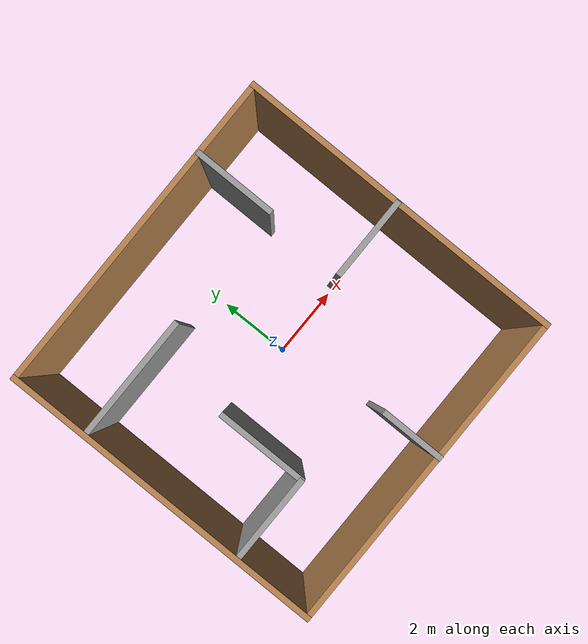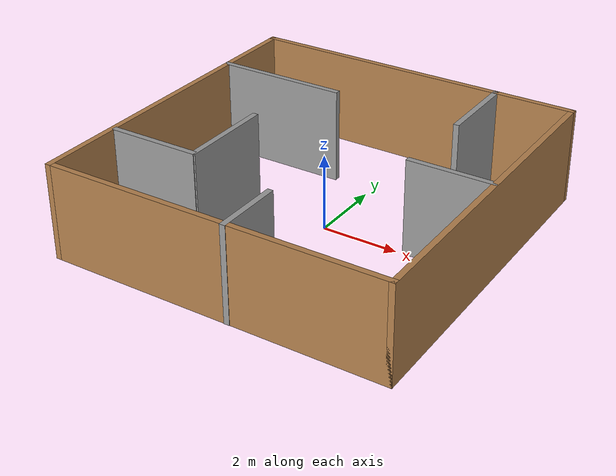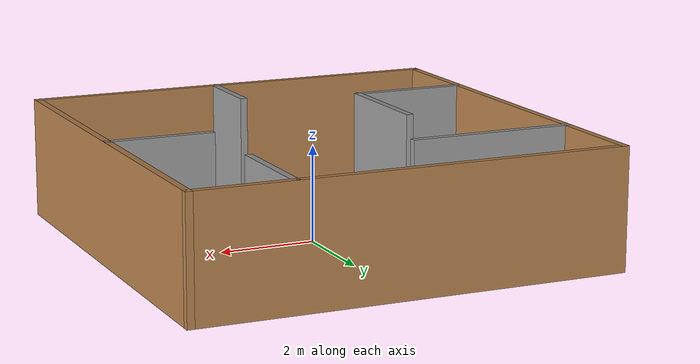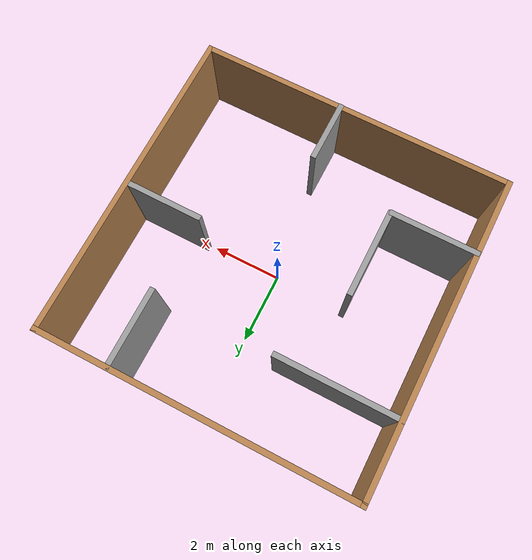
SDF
<?xml version='1.0'?>
<sdf version='1.7'>
  <model name='map_simple_base'>
    <pose>-0.069516 0.009866 0 0 -0 0</pose>
    <link name='Wall_100'>
      <collision name='Wall_100_Collision'>
        <geometry>
          <box>
            <size>2.25 0.15 2.5</size>
          </box>
        </geometry>
        <pose>0 0 1.25 0 -0 0</pose>
      </collision>
      <visual name='Wall_100_Visual'>
        <pose>0 0 1.25 0 -0 0</pose>
        <geometry>
          <box>
            <size>2.25 0.15 2.5</size>
          </box>
        </geometry>
        <material>
          <script>
            <uri>file://media/materials/scripts/gazebo.material</uri>
            <name>Gazebo/Grey</name>
          </script>
          <ambient>1 1 1 1</ambient>
        </material>
        <meta>
          <layer>0</layer>
        </meta>
      </visual>
      <pose>3.35453 0.084274 0 0 -0 3.14159</pose>
    </link>
    <link name='Wall_104'>
      <collision name='Wall_104_Collision'>
        <geometry>
          <box>
            <size>1.75 0.15 2.5</size>
          </box>
        </geometry>
        <pose>0 0 1.25 0 -0 0</pose>
      </collision>
      <visual name='Wall_104_Visual'>
        <pose>0 0 1.25 0 -0 0</pose>
        <geometry>
          <box>
            <size>1.75 0.15 2.5</size>
          </box>
        </geometry>
        <material>
          <script>
            <uri>file://media/materials/scripts/gazebo.material</uri>
            <name>Gazebo/Grey</name>
          </script>
          <ambient>1 1 1 1</ambient>
        </material>
        <meta>
          <layer>0</layer>
        </meta>
      </visual>
      <pose>0.43527 -3.63029 0 0 -0 -1.5708</pose>
    </link>
    <link name='Wall_108'>
      <collision name='Wall_108_Collision'>
        <geometry>
          <box>
            <size>2.25 0.15 2.5</size>
          </box>
        </geometry>
        <pose>0 0 1.25 0 -0 0</pose>
      </collision>
      <visual name='Wall_108_Visual'>
        <pose>0 0 1.25 0 -0 0</pose>
        <geometry>
          <box>
            <size>2.25 0.15 2.5</size>
          </box>
        </geometry>
        <material>
          <script>
            <uri>file://media/materials/scripts/gazebo.material</uri>
            <name>Gazebo/Grey</name>
          </script>
          <ambient>1 1 1 1</ambient>
        </material>
        <meta>
          <layer>0</layer>
        </meta>
      </visual>
      <pose>2.38211 3.34621 0 0 -0 -1.5708</pose>
    </link>
    <link name='Wall_14'>
      <collision name='Wall_14_Collision'>
        <geometry>
          <box>
            <size>9 0.15 2.5</size>
          </box>
        </geometry>
        <pose>0 0 1.25 0 -0 0</pose>
      </collision>
      <visual name='Wall_14_Visual'>
        <pose>0 0 1.25 0 -0 0</pose>
        <geometry>
          <box>
            <size>9 0.15 2.5</size>
          </box>
        </geometry>
        <material>
          <script>
            <uri>file://media/materials/scripts/gazebo.material</uri>
            <name>Gazebo/Wood</name>
          </script>
          <ambient>0.435294 0.796078 0.67451 1</ambient>
        </material>
        <meta>
          <layer>0</layer>
        </meta>
      </visual>
      <pose>-4.425 0.005289 0 0 -0 -1.5708</pose>
    </link>
    <link name='Wall_20'>
      <collision name='Wall_20_Collision'>
        <geometry>
          <box>
            <size>9 0.15 2.5</size>
          </box>
        </geometry>
        <pose>0 0 1.25 0 -0 0</pose>
      </collision>
      <visual name='Wall_20_Visual'>
        <pose>0 0 1.25 0 -0 0</pose>
        <geometry>
          <box>
            <size>9 0.15 2.5</size>
          </box>
        </geometry>
        <material>
          <script>
            <uri>file://media/materials/scripts/gazebo.material</uri>
            <name>Gazebo/Wood</name>
          </script>
          <ambient>0.435294 0.796078 0.67451 1</ambient>
        </material>
        <meta>
          <layer>0</layer>
        </meta>
      </visual>
      <pose>4.425 0.005289 0 0 -0 1.5708</pose>
    </link>
    <link name='Wall_21'>
      <collision name='Wall_21_Collision'>
        <geometry>
          <box>
            <size>9 0.15 2.5</size>
          </box>
        </geometry>
        <pose>0 0 1.25 0 -0 0</pose>
      </collision>
      <visual name='Wall_21_Visual'>
        <pose>0 0 1.25 0 -0 0</pose>
        <geometry>
          <box>
            <size>9 0.15 2.5</size>
          </box>
        </geometry>
        <material>
          <script>
            <uri>file://media/materials/scripts/gazebo.material</uri>
            <name>Gazebo/Wood</name>
          </script>
          <ambient>0.435294 0.796078 0.67451 1</ambient>
        </material>
        <meta>
          <layer>0</layer>
        </meta>
      </visual>
      <pose>-0 4.43029 0 0 -0 3.14159</pose>
    </link>
    <link name='Wall_23'>
      <collision name='Wall_23_Collision'>
        <geometry>
          <box>
            <size>9 0.15 2.5</size>
          </box>
        </geometry>
        <pose>0 0 1.25 0 -0 0</pose>
      </collision>
      <visual name='Wall_23_Visual'>
        <pose>0 0 1.25 0 -0 0</pose>
        <geometry>
          <box>
            <size>9 0.15 2.5</size>
          </box>
        </geometry>
        <material>
          <script>
            <uri>file://media/materials/scripts/gazebo.material</uri>
            <name>Gazebo/Wood</name>
          </script>
          <ambient>0.435294 0.796078 0.67451 1</ambient>
        </material>
        <meta>
          <layer>0</layer>
        </meta>
      </visual>
      <pose>-0 -4.41971 0 0 -0 0</pose>
    </link>
    <link name='Wall_65'>
      <collision name='Wall_65_Collision'>
        <geometry>
          <box>
            <size>2.5 0.15 2.5</size>
          </box>
        </geometry>
        <pose>0 0 1.25 0 -0 0</pose>
      </collision>
      <visual name='Wall_65_Visual'>
        <pose>0 0 1.25 0 -0 0</pose>
        <geometry>
          <box>
            <size>2.5 0.15 2.5</size>
          </box>
        </geometry>
        <material>
          <script>
            <uri>file://media/materials/scripts/gazebo.material</uri>
            <name>Gazebo/Grey</name>
          </script>
          <ambient>1 1 1 1</ambient>
        </material>
        <meta>
          <layer>0</layer>
        </meta>
      </visual>
      <pose>-3.23212 -2.2827 0 0 -0 0</pose>
    </link>
    <link name='Wall_81'>
      <collision name='Wall_81_Collision'>
        <geometry>
          <box>
            <size>2.5 0.15 2.5</size>
          </box>
        </geometry>
        <pose>0 0 1.25 0 -0 0</pose>
      </collision>
      <visual name='Wall_81_Visual'>
        <pose>0 0 1.25 0 -0 0</pose>
        <geometry>
          <box>
            <size>2.5 0.15 2.5</size>
          </box>
        </geometry>
        <material>
          <script>
            <uri>file://media/materials/scripts/gazebo.material</uri>
            <name>Gazebo/Grey</name>
          </script>
          <ambient>1 1 1 1</ambient>
        </material>
        <meta>
          <layer>0</layer>
        </meta>
      </visual>
      <pose>-2.01886 -1.08342 0 0 -0 1.5708</pose>
    </link>
    <link name='Wall_98'>
      <collision name='Wall_98_Collision'>
        <geometry>
          <box>
            <size>3.5 0.15 2.5</size>
          </box>
        </geometry>
        <pose>0 0 1.25 0 -0 0</pose>
      </collision>
      <visual name='Wall_98_Visual'>
        <pose>0 0 1.25 0 -0 0</pose>
        <geometry>
          <box>
            <size>3.5 0.15 2.5</size>
          </box>
        </geometry>
        <material>
          <script>
            <uri>file://media/materials/scripts/gazebo.material</uri>
            <name>Gazebo/Grey</name>
          </script>
          <ambient>1 1 1 1</ambient>
        </material>
        <meta>
          <layer>0</layer>
        </meta>
      </visual>
      <pose>-2.74241 2.31656 0 0 -0 0</pose>
    </link>
    <static>1</static>
  </model>
</sdf>
